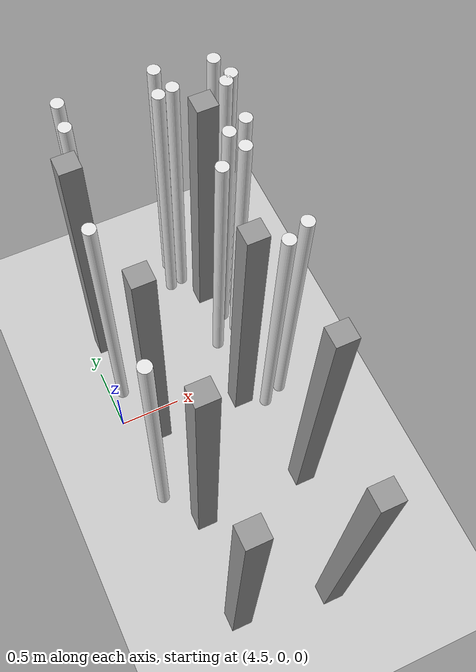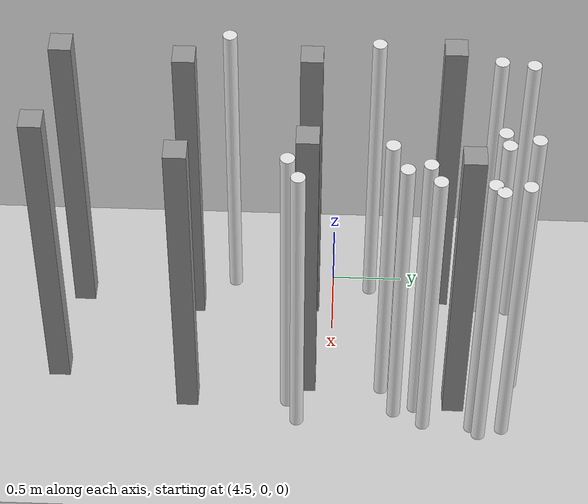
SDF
<sdf version="1.7">
 <world name="default">
  <model name="ground_plane">
   <static>1</static>
   <link name="link">
    <collision name="collision">
     <geometry><plane><normal>0 0 1</normal><size>100 100</size></plane></geometry>
     <surface><friction><ode><mu>100</mu><mu2>50</mu2></ode></friction></surface>
    </collision>
    <visual name="visual">
     <cast_shadows>0</cast_shadows>
     <geometry><plane><normal>0 0 1</normal><size>100 100</size></plane></geometry>
     <material>
      <script><uri>file://media/materials/scripts/gazebo.material</uri><name>Gazebo/Grey</name></script>
     </material>
    </visual>
   </link>
  </model>
  <model name="0.16_wall_clone_6">
   <pose>5.58437 2.57587 0 0 -0 0</pose>
   <link name="Wall_22">
    <collision name="Wall_22_Collision">
     <geometry><box><size>0.16 0.15 2.5</size></box></geometry>
     <pose>0 0 1.25 0 -0 0</pose>
    </collision>
    <visual name="Wall_22_Visual">
     <pose>0 0 1.25 0 -0 0</pose>
     <geometry><box><size>0.16 0.15 2.5</size></box></geometry>
     <material>
      <script><uri>file://media/materials/scripts/gazebo.material</uri><name>Gazebo/Grey</name></script>
      <ambient>1 1 1 1</ambient>
     </material>
     <meta><layer>0</layer></meta>
    </visual>
    <pose>-0.929849 -1.80578 0 0 -0 3.14159</pose>
   </link>
   <static>1</static>
  </model>
  <model name="0.16_wall_clone_7">
   <pose>6.57855 2.67796 0 0 -0 0</pose>
   <link name="Wall_22">
    <collision name="Wall_22_Collision">
     <geometry><box><size>0.16 0.15 2.5</size></box></geometry>
     <pose>0 0 1.25 0 -0 0</pose>
    </collision>
    <visual name="Wall_22_Visual">
     <pose>0 0 1.25 0 -0 0</pose>
     <geometry><box><size>0.16 0.15 2.5</size></box></geometry>
     <material>
      <script><uri>file://media/materials/scripts/gazebo.material</uri><name>Gazebo/Grey</name></script>
      <ambient>1 1 1 1</ambient>
     </material>
     <meta><layer>0</layer></meta>
    </visual>
    <pose>-0.929849 -1.80578 0 0 -0 3.14159</pose>
   </link>
   <static>1</static>
  </model>
  <model name="0.16_wall_clone_8">
   <pose>6.43517 1.62421 0 0 -0 0</pose>
   <link name="Wall_22">
    <collision name="Wall_22_Collision">
     <geometry><box><size>0.16 0.15 2.5</size></box></geometry>
     <pose>0 0 1.25 0 -0 0</pose>
    </collision>
    <visual name="Wall_22_Visual">
     <pose>0 0 1.25 0 -0 0</pose>
     <geometry><box><size>0.16 0.15 2.5</size></box></geometry>
     <material>
      <script><uri>file://media/materials/scripts/gazebo.material</uri><name>Gazebo/Grey</name></script>
      <ambient>1 1 1 1</ambient>
     </material>
     <meta><layer>0</layer></meta>
    </visual>
    <pose>-0.929849 -1.80578 0 0 -0 3.14159</pose>
   </link>
   <static>1</static>
  </model>
  <model name="0.16_wall_clone_9">
   <pose>5.68607 1.62961 0 0 -0 0</pose>
   <link name="Wall_22">
    <collision name="Wall_22_Collision">
     <geometry><box><size>0.16 0.15 2.5</size></box></geometry>
     <pose>0 0 1.25 0 -0 0</pose>
    </collision>
    <visual name="Wall_22_Visual">
     <pose>0 0 1.25 0 -0 0</pose>
     <geometry><box><size>0.16 0.15 2.5</size></box></geometry>
     <material>
      <script><uri>file://media/materials/scripts/gazebo.material</uri><name>Gazebo/Grey</name></script>
      <ambient>1 1 1 1</ambient>
     </material>
     <meta><layer>0</layer></meta>
    </visual>
    <pose>-0.929849 -1.80578 0 0 -0 3.14159</pose>
   </link>
   <static>1</static>
  </model>
  <model name="0.16_wall_clone_10">
   <pose>6.59414 0.79446 0 0 -0 0</pose>
   <link name="Wall_22">
    <collision name="Wall_22_Collision">
     <geometry><box><size>0.16 0.15 2.5</size></box></geometry>
     <pose>0 0 1.25 0 -0 0</pose>
    </collision>
    <visual name="Wall_22_Visual">
     <pose>0 0 1.25 0 -0 0</pose>
     <geometry><box><size>0.16 0.15 2.5</size></box></geometry>
     <material>
      <script><uri>file://media/materials/scripts/gazebo.material</uri><name>Gazebo/Grey</name></script>
      <ambient>1 1 1 1</ambient>
     </material>
     <meta><layer>0</layer></meta>
    </visual>
    <pose>-0.929849 -1.80578 0 0 -0 3.14159</pose>
   </link>
   <static>1</static>
  </model>
  <model name="0.16_wall_clone_11">
   <pose>6.35594 -0.14363 0 0 -0 0</pose>
   <link name="Wall_22">
    <collision name="Wall_22_Collision">
     <geometry><box><size>0.16 0.15 2.5</size></box></geometry>
     <pose>0 0 1.25 0 -0 0</pose>
    </collision>
    <visual name="Wall_22_Visual">
     <pose>0 0 1.25 0 -0 0</pose>
     <geometry><box><size>0.16 0.15 2.5</size></box></geometry>
     <material>
      <script><uri>file://media/materials/scripts/gazebo.material</uri><name>Gazebo/Grey</name></script>
      <ambient>1 1 1 1</ambient>
     </material>
     <meta><layer>0</layer></meta>
    </visual>
    <pose>-0.929849 -1.80578 0 0 -0 3.14159</pose>
   </link>
   <static>1</static>
  </model>
  <model name="0.16_wall_clone_12">
   <pose>5.62967 -0.03276 0 0 -0 0</pose>
   <link name="Wall_22">
    <collision name="Wall_22_Collision">
     <geometry><box><size>0.16 0.15 2.5</size></box></geometry>
     <pose>0 0 1.25 0 -0 0</pose>
    </collision>
    <visual name="Wall_22_Visual">
     <pose>0 0 1.25 0 -0 0</pose>
     <geometry><box><size>0.16 0.15 2.5</size></box></geometry>
     <material>
      <script><uri>file://media/materials/scripts/gazebo.material</uri><name>Gazebo/Grey</name></script>
      <ambient>1 1 1 1</ambient>
     </material>
     <meta><layer>0</layer></meta>
    </visual>
    <pose>-0.929849 -1.80578 0 0 -0 3.14159</pose>
   </link>
   <static>1</static>
  </model>
  <model name="0.16_wall_clone_13">
   <pose>5.71648 0.78705 0 0 -0 0</pose>
   <link name="Wall_22">
    <collision name="Wall_22_Collision">
     <geometry><box><size>0.16 0.15 2.5</size></box></geometry>
     <pose>0 0 1.25 0 -0 0</pose>
    </collision>
    <visual name="Wall_22_Visual">
     <pose>0 0 1.25 0 -0 0</pose>
     <geometry><box><size>0.16 0.15 2.5</size></box></geometry>
     <material>
      <script><uri>file://media/materials/scripts/gazebo.material</uri><name>Gazebo/Grey</name></script>
      <ambient>1 1 1 1</ambient>
     </material>
     <meta><layer>0</layer></meta>
    </visual>
    <pose>-0.929849 -1.80578 0 0 -0 3.14159</pose>
   </link>
   <static>1</static>
  </model>
  <model name="White_pole_clone_clone_10_clone_1">
   <link name="link_0">
    <inertial>
     <mass>1</mass>
     <inertia><ixx>0.145833</ixx><ixy>0</ixy><ixz>0</ixz><iyy>0.145833</iyy><iyz>0</iyz><izz>0.125</izz></inertia>
    </inertial>
    <visual name="visual">
     <geometry><cylinder><radius>0.0478039</radius><length>2.47001</length></cylinder></geometry>
     <material>
      <lighting>1</lighting>
      <script><uri>file://media/materials/scripts/gazebo.material</uri><name>Gazebo/White</name></script>
      <shader type="vertex"><normal_map>__default__</normal_map></shader>
      <ambient>1 1 1 1</ambient>
      <diffuse>1 1 1 1</diffuse>
      <specular>0 0 0 1</specular>
      <emissive>0 0 0 1</emissive>
     </material>
    </visual>
    <collision name="collision">
     <geometry><cylinder><radius>0.047804</radius><length>2.47001</length></cylinder></geometry>
     <surface>
      <friction>
       <ode><mu>1</mu><mu2>1</mu2><fdir1>0 0 0</fdir1><slip1>0</slip1><slip2>0</slip2></ode>
       <torsional>
        <coefficient>1</coefficient>
        <patch_radius>0</patch_radius>
        <surface_radius>0</surface_radius>
        <use_patch_radius>1</use_patch_radius>
        <ode><slip>0</slip></ode>
       </torsional>
      </friction>
      <bounce><restitution_coefficient>0</restitution_coefficient><threshold>1e+06</threshold></bounce>
      <contact>
       <collide_without_contact>0</collide_without_contact>
       <collide_without_contact_bitmask>1</collide_without_contact_bitmask>
       <collide_bitmask>1</collide_bitmask>
       <ode>
        <soft_cfm>0</soft_cfm>
        <soft_erp>0.2</soft_erp>
        <kp>1e+13</kp>
        <kd>1</kd>
        <max_vel>0.01</max_vel>
        <min_depth>0</min_depth>
       </ode>
       <bullet>
        <split_impulse>1</split_impulse>
        <split_impulse_penetration_threshold>-0.01</split_impulse_penetration_threshold>
        <soft_cfm>0</soft_cfm>
        <soft_erp>0.2</soft_erp>
        <kp>1e+13</kp>
        <kd>1</kd>
       </bullet>
      </contact>
     </surface>
    </collision>
   </link>
   <static>1</static>
   <pose>4.55917 -0.727853 1.235 0 -2e-06 -5e-06</pose>
  </model>
  <model name="White_pole_clone_clone_10_clone_5">
   <link name="link_0">
    <inertial>
     <mass>1</mass>
     <inertia><ixx>0.145833</ixx><ixy>0</ixy><ixz>0</ixz><iyy>0.145833</iyy><iyz>0</iyz><izz>0.125</izz></inertia>
    </inertial>
    <visual name="visual">
     <geometry><cylinder><radius>0.0478039</radius><length>2.47001</length></cylinder></geometry>
     <material>
      <lighting>1</lighting>
      <script><uri>file://media/materials/scripts/gazebo.material</uri><name>Gazebo/White</name></script>
      <shader type="vertex"><normal_map>__default__</normal_map></shader>
      <ambient>1 1 1 1</ambient>
      <diffuse>1 1 1 1</diffuse>
      <specular>0 0 0 1</specular>
      <emissive>0 0 0 1</emissive>
     </material>
    </visual>
    <collision name="collision">
     <geometry><cylinder><radius>0.047804</radius><length>2.47001</length></cylinder></geometry>
     <surface>
      <friction>
       <ode><mu>1</mu><mu2>1</mu2><fdir1>0 0 0</fdir1><slip1>0</slip1><slip2>0</slip2></ode>
       <torsional>
        <coefficient>1</coefficient>
        <patch_radius>0</patch_radius>
        <surface_radius>0</surface_radius>
        <use_patch_radius>1</use_patch_radius>
        <ode><slip>0</slip></ode>
       </torsional>
      </friction>
      <bounce><restitution_coefficient>0</restitution_coefficient><threshold>1e+06</threshold></bounce>
      <contact>
       <collide_without_contact>0</collide_without_contact>
       <collide_without_contact_bitmask>1</collide_without_contact_bitmask>
       <collide_bitmask>1</collide_bitmask>
       <ode>
        <soft_cfm>0</soft_cfm>
        <soft_erp>0.2</soft_erp>
        <kp>1e+13</kp>
        <kd>1</kd>
        <max_vel>0.01</max_vel>
        <min_depth>0</min_depth>
       </ode>
       <bullet>
        <split_impulse>1</split_impulse>
        <split_impulse_penetration_threshold>-0.01</split_impulse_penetration_threshold>
        <soft_cfm>0</soft_cfm>
        <soft_erp>0.2</soft_erp>
        <kp>1e+13</kp>
        <kd>1</kd>
       </bullet>
      </contact>
     </surface>
    </collision>
   </link>
   <static>1</static>
   <pose>4.60808 0.268553 1.235 0 -2e-06 -5e-06</pose>
  </model>
  <model name="White_pole_clone_clone_10_clone_9">
   <link name="link_0">
    <inertial>
     <mass>1</mass>
     <inertia><ixx>0.145833</ixx><ixy>0</ixy><ixz>0</ixz><iyy>0.145833</iyy><iyz>0</iyz><izz>0.125</izz></inertia>
    </inertial>
    <visual name="visual">
     <geometry><cylinder><radius>0.0478039</radius><length>2.47001</length></cylinder></geometry>
     <material>
      <lighting>1</lighting>
      <script><uri>file://media/materials/scripts/gazebo.material</uri><name>Gazebo/White</name></script>
      <shader type="vertex"><normal_map>__default__</normal_map></shader>
      <ambient>1 1 1 1</ambient>
      <diffuse>1 1 1 1</diffuse>
      <specular>0 0 0 1</specular>
      <emissive>0 0 0 1</emissive>
     </material>
    </visual>
    <collision name="collision">
     <geometry><cylinder><radius>0.047804</radius><length>2.47001</length></cylinder></geometry>
     <surface>
      <friction>
       <ode><mu>1</mu><mu2>1</mu2><fdir1>0 0 0</fdir1><slip1>0</slip1><slip2>0</slip2></ode>
       <torsional>
        <coefficient>1</coefficient>
        <patch_radius>0</patch_radius>
        <surface_radius>0</surface_radius>
        <use_patch_radius>1</use_patch_radius>
        <ode><slip>0</slip></ode>
       </torsional>
      </friction>
      <bounce><restitution_coefficient>0</restitution_coefficient><threshold>1e+06</threshold></bounce>
      <contact>
       <collide_without_contact>0</collide_without_contact>
       <collide_without_contact_bitmask>1</collide_without_contact_bitmask>
       <collide_bitmask>1</collide_bitmask>
       <ode>
        <soft_cfm>0</soft_cfm>
        <soft_erp>0.2</soft_erp>
        <kp>1e+13</kp>
        <kd>1</kd>
        <max_vel>0.01</max_vel>
        <min_depth>0</min_depth>
       </ode>
       <bullet>
        <split_impulse>1</split_impulse>
        <split_impulse_penetration_threshold>-0.01</split_impulse_penetration_threshold>
        <soft_cfm>0</soft_cfm>
        <soft_erp>0.2</soft_erp>
        <kp>1e+13</kp>
        <kd>1</kd>
       </bullet>
      </contact>
     </surface>
    </collision>
   </link>
   <static>1</static>
   <pose>4.75035 1.07004 1.235 0 -2e-06 -5e-06</pose>
  </model>
  <model name="White_pole_clone_clone_10_clone_10">
   <link name="link_0">
    <inertial>
     <mass>1</mass>
     <inertia><ixx>0.145833</ixx><ixy>0</ixy><ixz>0</ixz><iyy>0.145833</iyy><iyz>0</iyz><izz>0.125</izz></inertia>
    </inertial>
    <visual name="visual">
     <geometry><cylinder><radius>0.0478039</radius><length>2.47001</length></cylinder></geometry>
     <material>
      <lighting>1</lighting>
      <script><uri>file://media/materials/scripts/gazebo.material</uri><name>Gazebo/White</name></script>
      <shader type="vertex"><normal_map>__default__</normal_map></shader>
      <ambient>1 1 1 1</ambient>
      <diffuse>1 1 1 1</diffuse>
      <specular>0 0 0 1</specular>
      <emissive>0 0 0 1</emissive>
     </material>
    </visual>
    <collision name="collision">
     <geometry><cylinder><radius>0.047804</radius><length>2.47001</length></cylinder></geometry>
     <surface>
      <friction>
       <ode><mu>1</mu><mu2>1</mu2><fdir1>0 0 0</fdir1><slip1>0</slip1><slip2>0</slip2></ode>
       <torsional>
        <coefficient>1</coefficient>
        <patch_radius>0</patch_radius>
        <surface_radius>0</surface_radius>
        <use_patch_radius>1</use_patch_radius>
        <ode><slip>0</slip></ode>
       </torsional>
      </friction>
      <bounce><restitution_coefficient>0</restitution_coefficient><threshold>1e+06</threshold></bounce>
      <contact>
       <collide_without_contact>0</collide_without_contact>
       <collide_without_contact_bitmask>1</collide_without_contact_bitmask>
       <collide_bitmask>1</collide_bitmask>
       <ode>
        <soft_cfm>0</soft_cfm>
        <soft_erp>0.2</soft_erp>
        <kp>1e+13</kp>
        <kd>1</kd>
        <max_vel>0.01</max_vel>
        <min_depth>0</min_depth>
       </ode>
       <bullet>
        <split_impulse>1</split_impulse>
        <split_impulse_penetration_threshold>-0.01</split_impulse_penetration_threshold>
        <soft_cfm>0</soft_cfm>
        <soft_erp>0.2</soft_erp>
        <kp>1e+13</kp>
        <kd>1</kd>
       </bullet>
      </contact>
     </surface>
    </collision>
   </link>
   <static>1</static>
   <pose>4.77607 1.28025 1.235 0 -2e-06 -5e-06</pose>
  </model>
  <model name="White_pole_clone_clone_10_clone_11">
   <link name="link_0">
    <inertial>
     <mass>1</mass>
     <inertia><ixx>0.145833</ixx><ixy>0</ixy><ixz>0</ixz><iyy>0.145833</iyy><iyz>0</iyz><izz>0.125</izz></inertia>
    </inertial>
    <visual name="visual">
     <geometry><cylinder><radius>0.0478039</radius><length>2.47001</length></cylinder></geometry>
     <material>
      <lighting>1</lighting>
      <script><uri>file://media/materials/scripts/gazebo.material</uri><name>Gazebo/White</name></script>
      <shader type="vertex"><normal_map>__default__</normal_map></shader>
      <ambient>1 1 1 1</ambient>
      <diffuse>1 1 1 1</diffuse>
      <specular>0 0 0 1</specular>
      <emissive>0 0 0 1</emissive>
     </material>
    </visual>
    <collision name="collision">
     <geometry><cylinder><radius>0.047804</radius><length>2.47001</length></cylinder></geometry>
     <surface>
      <friction>
       <ode><mu>1</mu><mu2>1</mu2><fdir1>0 0 0</fdir1><slip1>0</slip1><slip2>0</slip2></ode>
       <torsional>
        <coefficient>1</coefficient>
        <patch_radius>0</patch_radius>
        <surface_radius>0</surface_radius>
        <use_patch_radius>1</use_patch_radius>
        <ode><slip>0</slip></ode>
       </torsional>
      </friction>
      <bounce><restitution_coefficient>0</restitution_coefficient><threshold>1e+06</threshold></bounce>
      <contact>
       <collide_without_contact>0</collide_without_contact>
       <collide_without_contact_bitmask>1</collide_without_contact_bitmask>
       <collide_bitmask>1</collide_bitmask>
       <ode>
        <soft_cfm>0</soft_cfm>
        <soft_erp>0.2</soft_erp>
        <kp>1e+13</kp>
        <kd>1</kd>
        <max_vel>0.01</max_vel>
        <min_depth>0</min_depth>
       </ode>
       <bullet>
        <split_impulse>1</split_impulse>
        <split_impulse_penetration_threshold>-0.01</split_impulse_penetration_threshold>
        <soft_cfm>0</soft_cfm>
        <soft_erp>0.2</soft_erp>
        <kp>1e+13</kp>
        <kd>1</kd>
       </bullet>
      </contact>
     </surface>
    </collision>
   </link>
   <static>1</static>
   <pose>5.41084 1.07383 1.235 0 -2e-06 -5e-06</pose>
  </model>
  <model name="White_pole_clone_clone_10_clone_12">
   <link name="link_0">
    <inertial>
     <mass>1</mass>
     <inertia><ixx>0.145833</ixx><ixy>0</ixy><ixz>0</ixz><iyy>0.145833</iyy><iyz>0</iyz><izz>0.125</izz></inertia>
    </inertial>
    <visual name="visual">
     <geometry><cylinder><radius>0.0478039</radius><length>2.47001</length></cylinder></geometry>
     <material>
      <lighting>1</lighting>
      <script><uri>file://media/materials/scripts/gazebo.material</uri><name>Gazebo/White</name></script>
      <shader type="vertex"><normal_map>__default__</normal_map></shader>
      <ambient>1 1 1 1</ambient>
      <diffuse>1 1 1 1</diffuse>
      <specular>0 0 0 1</specular>
      <emissive>0 0 0 1</emissive>
     </material>
    </visual>
    <collision name="collision">
     <geometry><cylinder><radius>0.047804</radius><length>2.47001</length></cylinder></geometry>
     <surface>
      <friction>
       <ode><mu>1</mu><mu2>1</mu2><fdir1>0 0 0</fdir1><slip1>0</slip1><slip2>0</slip2></ode>
       <torsional>
        <coefficient>1</coefficient>
        <patch_radius>0</patch_radius>
        <surface_radius>0</surface_radius>
        <use_patch_radius>1</use_patch_radius>
        <ode><slip>0</slip></ode>
       </torsional>
      </friction>
      <bounce><restitution_coefficient>0</restitution_coefficient><threshold>1e+06</threshold></bounce>
      <contact>
       <collide_without_contact>0</collide_without_contact>
       <collide_without_contact_bitmask>1</collide_without_contact_bitmask>
       <collide_bitmask>1</collide_bitmask>
       <ode>
        <soft_cfm>0</soft_cfm>
        <soft_erp>0.2</soft_erp>
        <kp>1e+13</kp>
        <kd>1</kd>
        <max_vel>0.01</max_vel>
        <min_depth>0</min_depth>
       </ode>
       <bullet>
        <split_impulse>1</split_impulse>
        <split_impulse_penetration_threshold>-0.01</split_impulse_penetration_threshold>
        <soft_cfm>0</soft_cfm>
        <soft_erp>0.2</soft_erp>
        <kp>1e+13</kp>
        <kd>1</kd>
       </bullet>
      </contact>
     </surface>
    </collision>
   </link>
   <static>1</static>
   <pose>5.46728 1.28478 1.235 0 -2e-06 -5e-06</pose>
  </model>
  <model name="White_pole_clone_clone_10_clone_13">
   <link name="link_0">
    <inertial>
     <mass>1</mass>
     <inertia><ixx>0.145833</ixx><ixy>0</ixy><ixz>0</ixz><iyy>0.145833</iyy><iyz>0</iyz><izz>0.125</izz></inertia>
    </inertial>
    <visual name="visual">
     <geometry><cylinder><radius>0.0478039</radius><length>2.47001</length></cylinder></geometry>
     <material>
      <lighting>1</lighting>
      <script><uri>file://media/materials/scripts/gazebo.material</uri><name>Gazebo/White</name></script>
      <shader type="vertex"><normal_map>__default__</normal_map></shader>
      <ambient>1 1 1 1</ambient>
      <diffuse>1 1 1 1</diffuse>
      <specular>0 0 0 1</specular>
      <emissive>0 0 0 1</emissive>
     </material>
    </visual>
    <collision name="collision">
     <geometry><cylinder><radius>0.047804</radius><length>2.47001</length></cylinder></geometry>
     <surface>
      <friction>
       <ode><mu>1</mu><mu2>1</mu2><fdir1>0 0 0</fdir1><slip1>0</slip1><slip2>0</slip2></ode>
       <torsional>
        <coefficient>1</coefficient>
        <patch_radius>0</patch_radius>
        <surface_radius>0</surface_radius>
        <use_patch_radius>1</use_patch_radius>
        <ode><slip>0</slip></ode>
       </torsional>
      </friction>
      <bounce><restitution_coefficient>0</restitution_coefficient><threshold>1e+06</threshold></bounce>
      <contact>
       <collide_without_contact>0</collide_without_contact>
       <collide_without_contact_bitmask>1</collide_without_contact_bitmask>
       <collide_bitmask>1</collide_bitmask>
       <ode>
        <soft_cfm>0</soft_cfm>
        <soft_erp>0.2</soft_erp>
        <kp>1e+13</kp>
        <kd>1</kd>
        <max_vel>0.01</max_vel>
        <min_depth>0</min_depth>
       </ode>
       <bullet>
        <split_impulse>1</split_impulse>
        <split_impulse_penetration_threshold>-0.01</split_impulse_penetration_threshold>
        <soft_cfm>0</soft_cfm>
        <soft_erp>0.2</soft_erp>
        <kp>1e+13</kp>
        <kd>1</kd>
       </bullet>
      </contact>
     </surface>
    </collision>
   </link>
   <static>1</static>
   <pose>5.5212 1.09502 1.235 0 -2e-06 -5e-06</pose>
  </model>
  <model name="White_pole_clone_clone_10_clone_14">
   <link name="link_0">
    <inertial>
     <mass>1</mass>
     <inertia><ixx>0.145833</ixx><ixy>0</ixy><ixz>0</ixz><iyy>0.145833</iyy><iyz>0</iyz><izz>0.125</izz></inertia>
    </inertial>
    <visual name="visual">
     <geometry><cylinder><radius>0.0478039</radius><length>2.47001</length></cylinder></geometry>
     <material>
      <lighting>1</lighting>
      <script><uri>file://media/materials/scripts/gazebo.material</uri><name>Gazebo/White</name></script>
      <shader type="vertex"><normal_map>__default__</normal_map></shader>
      <ambient>1 1 1 1</ambient>
      <diffuse>1 1 1 1</diffuse>
      <specular>0 0 0 1</specular>
      <emissive>0 0 0 1</emissive>
     </material>
    </visual>
    <collision name="collision">
     <geometry><cylinder><radius>0.047804</radius><length>2.47001</length></cylinder></geometry>
     <surface>
      <friction>
       <ode><mu>1</mu><mu2>1</mu2><fdir1>0 0 0</fdir1><slip1>0</slip1><slip2>0</slip2></ode>
       <torsional>
        <coefficient>1</coefficient>
        <patch_radius>0</patch_radius>
        <surface_radius>0</surface_radius>
        <use_patch_radius>1</use_patch_radius>
        <ode><slip>0</slip></ode>
       </torsional>
      </friction>
      <bounce><restitution_coefficient>0</restitution_coefficient><threshold>1e+06</threshold></bounce>
      <contact>
       <collide_without_contact>0</collide_without_contact>
       <collide_without_contact_bitmask>1</collide_without_contact_bitmask>
       <collide_bitmask>1</collide_bitmask>
       <ode>
        <soft_cfm>0</soft_cfm>
        <soft_erp>0.2</soft_erp>
        <kp>1e+13</kp>
        <kd>1</kd>
        <max_vel>0.01</max_vel>
        <min_depth>0</min_depth>
       </ode>
       <bullet>
        <split_impulse>1</split_impulse>
        <split_impulse_penetration_threshold>-0.01</split_impulse_penetration_threshold>
        <soft_cfm>0</soft_cfm>
        <soft_erp>0.2</soft_erp>
        <kp>1e+13</kp>
        <kd>1</kd>
       </bullet>
      </contact>
     </surface>
    </collision>
   </link>
   <static>1</static>
   <pose>5.87022 0.996652 1.235 0 -2e-06 -5e-06</pose>
  </model>
  <model name="White_pole_clone_clone_10_clone_15">
   <link name="link_0">
    <inertial>
     <mass>1</mass>
     <inertia><ixx>0.145833</ixx><ixy>0</ixy><ixz>0</ixz><iyy>0.145833</iyy><iyz>0</iyz><izz>0.125</izz></inertia>
    </inertial>
    <visual name="visual">
     <geometry><cylinder><radius>0.0478039</radius><length>2.47001</length></cylinder></geometry>
     <material>
      <lighting>1</lighting>
      <script><uri>file://media/materials/scripts/gazebo.material</uri><name>Gazebo/White</name></script>
      <shader type="vertex"><normal_map>__default__</normal_map></shader>
      <ambient>1 1 1 1</ambient>
      <diffuse>1 1 1 1</diffuse>
      <specular>0 0 0 1</specular>
      <emissive>0 0 0 1</emissive>
     </material>
    </visual>
    <collision name="collision">
     <geometry><cylinder><radius>0.047804</radius><length>2.47001</length></cylinder></geometry>
     <surface>
      <friction>
       <ode><mu>1</mu><mu2>1</mu2><fdir1>0 0 0</fdir1><slip1>0</slip1><slip2>0</slip2></ode>
       <torsional>
        <coefficient>1</coefficient>
        <patch_radius>0</patch_radius>
        <surface_radius>0</surface_radius>
        <use_patch_radius>1</use_patch_radius>
        <ode><slip>0</slip></ode>
       </torsional>
      </friction>
      <bounce><restitution_coefficient>0</restitution_coefficient><threshold>1e+06</threshold></bounce>
      <contact>
       <collide_without_contact>0</collide_without_contact>
       <collide_without_contact_bitmask>1</collide_without_contact_bitmask>
       <collide_bitmask>1</collide_bitmask>
       <ode>
        <soft_cfm>0</soft_cfm>
        <soft_erp>0.2</soft_erp>
        <kp>1e+13</kp>
        <kd>1</kd>
        <max_vel>0.01</max_vel>
        <min_depth>0</min_depth>
       </ode>
       <bullet>
        <split_impulse>1</split_impulse>
        <split_impulse_penetration_threshold>-0.01</split_impulse_penetration_threshold>
        <soft_cfm>0</soft_cfm>
        <soft_erp>0.2</soft_erp>
        <kp>1e+13</kp>
        <kd>1</kd>
       </bullet>
      </contact>
     </surface>
    </collision>
   </link>
   <static>1</static>
   <pose>5.93063 1.04743 1.235 0 -2e-06 -5e-06</pose>
  </model>
  <model name="White_pole_clone_clone_10_clone_16">
   <link name="link_0">
    <inertial>
     <mass>1</mass>
     <inertia><ixx>0.145833</ixx><ixy>0</ixy><ixz>0</ixz><iyy>0.145833</iyy><iyz>0</iyz><izz>0.125</izz></inertia>
    </inertial>
    <visual name="visual">
     <geometry><cylinder><radius>0.0478039</radius><length>2.47001</length></cylinder></geometry>
     <material>
      <lighting>1</lighting>
      <script><uri>file://media/materials/scripts/gazebo.material</uri><name>Gazebo/White</name></script>
      <shader type="vertex"><normal_map>__default__</normal_map></shader>
      <ambient>1 1 1 1</ambient>
      <diffuse>1 1 1 1</diffuse>
      <specular>0 0 0 1</specular>
      <emissive>0 0 0 1</emissive>
     </material>
    </visual>
    <collision name="collision">
     <geometry><cylinder><radius>0.047804</radius><length>2.47001</length></cylinder></geometry>
     <surface>
      <friction>
       <ode><mu>1</mu><mu2>1</mu2><fdir1>0 0 0</fdir1><slip1>0</slip1><slip2>0</slip2></ode>
       <torsional>
        <coefficient>1</coefficient>
        <patch_radius>0</patch_radius>
        <surface_radius>0</surface_radius>
        <use_patch_radius>1</use_patch_radius>
        <ode><slip>0</slip></ode>
       </torsional>
      </friction>
      <bounce><restitution_coefficient>0</restitution_coefficient><threshold>1e+06</threshold></bounce>
      <contact>
       <collide_without_contact>0</collide_without_contact>
       <collide_without_contact_bitmask>1</collide_without_contact_bitmask>
       <collide_bitmask>1</collide_bitmask>
       <ode>
        <soft_cfm>0</soft_cfm>
        <soft_erp>0.2</soft_erp>
        <kp>1e+13</kp>
        <kd>1</kd>
        <max_vel>0.01</max_vel>
        <min_depth>0</min_depth>
       </ode>
       <bullet>
        <split_impulse>1</split_impulse>
        <split_impulse_penetration_threshold>-0.01</split_impulse_penetration_threshold>
        <soft_cfm>0</soft_cfm>
        <soft_erp>0.2</soft_erp>
        <kp>1e+13</kp>
        <kd>1</kd>
       </bullet>
      </contact>
     </surface>
    </collision>
   </link>
   <static>1</static>
   <pose>5.87733 1.21257 1.235 0 -2e-06 -5e-06</pose>
  </model>
  <model name="White_pole_clone_clone_10_clone_17">
   <link name="link_0">
    <inertial>
     <mass>1</mass>
     <inertia><ixx>0.145833</ixx><ixy>0</ixy><ixz>0</ixz><iyy>0.145833</iyy><iyz>0</iyz><izz>0.125</izz></inertia>
    </inertial>
    <visual name="visual">
     <geometry><cylinder><radius>0.0478039</radius><length>2.47001</length></cylinder></geometry>
     <material>
      <lighting>1</lighting>
      <script><uri>file://media/materials/scripts/gazebo.material</uri><name>Gazebo/White</name></script>
      <shader type="vertex"><normal_map>__default__</normal_map></shader>
      <ambient>1 1 1 1</ambient>
      <diffuse>1 1 1 1</diffuse>
      <specular>0 0 0 1</specular>
      <emissive>0 0 0 1</emissive>
     </material>
    </visual>
    <collision name="collision">
     <geometry><cylinder><radius>0.047804</radius><length>2.47001</length></cylinder></geometry>
     <surface>
      <friction>
       <ode><mu>1</mu><mu2>1</mu2><fdir1>0 0 0</fdir1><slip1>0</slip1><slip2>0</slip2></ode>
       <torsional>
        <coefficient>1</coefficient>
        <patch_radius>0</patch_radius>
        <surface_radius>0</surface_radius>
        <use_patch_radius>1</use_patch_radius>
        <ode><slip>0</slip></ode>
       </torsional>
      </friction>
      <bounce><restitution_coefficient>0</restitution_coefficient><threshold>1e+06</threshold></bounce>
      <contact>
       <collide_without_contact>0</collide_without_contact>
       <collide_without_contact_bitmask>1</collide_without_contact_bitmask>
       <collide_bitmask>1</collide_bitmask>
       <ode>
        <soft_cfm>0</soft_cfm>
        <soft_erp>0.2</soft_erp>
        <kp>1e+13</kp>
        <kd>1</kd>
        <max_vel>0.01</max_vel>
        <min_depth>0</min_depth>
       </ode>
       <bullet>
        <split_impulse>1</split_impulse>
        <split_impulse_penetration_threshold>-0.01</split_impulse_penetration_threshold>
        <soft_cfm>0</soft_cfm>
        <soft_erp>0.2</soft_erp>
        <kp>1e+13</kp>
        <kd>1</kd>
       </bullet>
      </contact>
     </surface>
    </collision>
   </link>
   <static>1</static>
   <pose>5.85383 0.657223 1.235 0 -2e-06 -5e-06</pose>
  </model>
  <model name="White_pole_clone_clone_10_clone_18">
   <link name="link_0">
    <inertial>
     <mass>1</mass>
     <inertia><ixx>0.145833</ixx><ixy>0</ixy><ixz>0</ixz><iyy>0.145833</iyy><iyz>0</iyz><izz>0.125</izz></inertia>
    </inertial>
    <visual name="visual">
     <geometry><cylinder><radius>0.0478039</radius><length>2.47001</length></cylinder></geometry>
     <material>
      <lighting>1</lighting>
      <script><uri>file://media/materials/scripts/gazebo.material</uri><name>Gazebo/White</name></script>
      <shader type="vertex"><normal_map>__default__</normal_map></shader>
      <ambient>1 1 1 1</ambient>
      <diffuse>1 1 1 1</diffuse>
      <specular>0 0 0 1</specular>
      <emissive>0 0 0 1</emissive>
     </material>
    </visual>
    <collision name="collision">
     <geometry><cylinder><radius>0.047804</radius><length>2.47001</length></cylinder></geometry>
     <surface>
      <friction>
       <ode><mu>1</mu><mu2>1</mu2><fdir1>0 0 0</fdir1><slip1>0</slip1><slip2>0</slip2></ode>
       <torsional>
        <coefficient>1</coefficient>
        <patch_radius>0</patch_radius>
        <surface_radius>0</surface_radius>
        <use_patch_radius>1</use_patch_radius>
        <ode><slip>0</slip></ode>
       </torsional>
      </friction>
      <bounce><restitution_coefficient>0</restitution_coefficient><threshold>1e+06</threshold></bounce>
      <contact>
       <collide_without_contact>0</collide_without_contact>
       <collide_without_contact_bitmask>1</collide_without_contact_bitmask>
       <collide_bitmask>1</collide_bitmask>
       <ode>
        <soft_cfm>0</soft_cfm>
        <soft_erp>0.2</soft_erp>
        <kp>1e+13</kp>
        <kd>1</kd>
        <max_vel>0.01</max_vel>
        <min_depth>0</min_depth>
       </ode>
       <bullet>
        <split_impulse>1</split_impulse>
        <split_impulse_penetration_threshold>-0.01</split_impulse_penetration_threshold>
        <soft_cfm>0</soft_cfm>
        <soft_erp>0.2</soft_erp>
        <kp>1e+13</kp>
        <kd>1</kd>
       </bullet>
      </contact>
     </surface>
    </collision>
   </link>
   <static>1</static>
   <pose>5.70735 0.598181 1.235 0 -2e-06 -5e-06</pose>
  </model>
  <model name="White_pole_clone_clone_10_clone_19">
   <link name="link_0">
    <inertial>
     <mass>1</mass>
     <inertia><ixx>0.145833</ixx><ixy>0</ixy><ixz>0</ixz><iyy>0.145833</iyy><iyz>0</iyz><izz>0.125</izz></inertia>
    </inertial>
    <visual name="visual">
     <geometry><cylinder><radius>0.0478039</radius><length>2.47001</length></cylinder></geometry>
     <material>
      <lighting>1</lighting>
      <script><uri>file://media/materials/scripts/gazebo.material</uri><name>Gazebo/White</name></script>
      <shader type="vertex"><normal_map>__default__</normal_map></shader>
      <ambient>1 1 1 1</ambient>
      <diffuse>1 1 1 1</diffuse>
      <specular>0 0 0 1</specular>
      <emissive>0 0 0 1</emissive>
     </material>
    </visual>
    <collision name="collision">
     <geometry><cylinder><radius>0.047804</radius><length>2.47001</length></cylinder></geometry>
     <surface>
      <friction>
       <ode><mu>1</mu><mu2>1</mu2><fdir1>0 0 0</fdir1><slip1>0</slip1><slip2>0</slip2></ode>
       <torsional>
        <coefficient>1</coefficient>
        <patch_radius>0</patch_radius>
        <surface_radius>0</surface_radius>
        <use_patch_radius>1</use_patch_radius>
        <ode><slip>0</slip></ode>
       </torsional>
      </friction>
      <bounce><restitution_coefficient>0</restitution_coefficient><threshold>1e+06</threshold></bounce>
      <contact>
       <collide_without_contact>0</collide_without_contact>
       <collide_without_contact_bitmask>1</collide_without_contact_bitmask>
       <collide_bitmask>1</collide_bitmask>
       <ode>
        <soft_cfm>0</soft_cfm>
        <soft_erp>0.2</soft_erp>
        <kp>1e+13</kp>
        <kd>1</kd>
        <max_vel>0.01</max_vel>
        <min_depth>0</min_depth>
       </ode>
       <bullet>
        <split_impulse>1</split_impulse>
        <split_impulse_penetration_threshold>-0.01</split_impulse_penetration_threshold>
        <soft_cfm>0</soft_cfm>
        <soft_erp>0.2</soft_erp>
        <kp>1e+13</kp>
        <kd>1</kd>
       </bullet>
      </contact>
     </surface>
    </collision>
   </link>
   <static>1</static>
   <pose>5.75411 0.451392 1.235 0 -2e-06 -5e-06</pose>
  </model>
  <model name="White_pole_clone_clone_10_clone_20">
   <link name="link_0">
    <inertial>
     <mass>1</mass>
     <inertia><ixx>0.145833</ixx><ixy>0</ixy><ixz>0</ixz><iyy>0.145833</iyy><iyz>0</iyz><izz>0.125</izz></inertia>
    </inertial>
    <visual name="visual">
     <geometry><cylinder><radius>0.0478039</radius><length>2.47001</length></cylinder></geometry>
     <material>
      <lighting>1</lighting>
      <script><uri>file://media/materials/scripts/gazebo.material</uri><name>Gazebo/White</name></script>
      <shader type="vertex"><normal_map>__default__</normal_map></shader>
      <ambient>1 1 1 1</ambient>
      <diffuse>1 1 1 1</diffuse>
      <specular>0 0 0 1</specular>
      <emissive>0 0 0 1</emissive>
     </material>
    </visual>
    <collision name="collision">
     <geometry><cylinder><radius>0.047804</radius><length>2.47001</length></cylinder></geometry>
     <surface>
      <friction>
       <ode><mu>1</mu><mu2>1</mu2><fdir1>0 0 0</fdir1><slip1>0</slip1><slip2>0</slip2></ode>
       <torsional>
        <coefficient>1</coefficient>
        <patch_radius>0</patch_radius>
        <surface_radius>0</surface_radius>
        <use_patch_radius>1</use_patch_radius>
        <ode><slip>0</slip></ode>
       </torsional>
      </friction>
      <bounce><restitution_coefficient>0</restitution_coefficient><threshold>1e+06</threshold></bounce>
      <contact>
       <collide_without_contact>0</collide_without_contact>
       <collide_without_contact_bitmask>1</collide_without_contact_bitmask>
       <collide_bitmask>1</collide_bitmask>
       <ode>
        <soft_cfm>0</soft_cfm>
        <soft_erp>0.2</soft_erp>
        <kp>1e+13</kp>
        <kd>1</kd>
        <max_vel>0.01</max_vel>
        <min_depth>0</min_depth>
       </ode>
       <bullet>
        <split_impulse>1</split_impulse>
        <split_impulse_penetration_threshold>-0.01</split_impulse_penetration_threshold>
        <soft_cfm>0</soft_cfm>
        <soft_erp>0.2</soft_erp>
        <kp>1e+13</kp>
        <kd>1</kd>
       </bullet>
      </contact>
     </surface>
    </collision>
   </link>
   <static>1</static>
   <pose>5.54678 0.360046 1.235 0 -2e-06 -5e-06</pose>
  </model>
  <model name="White_pole_clone_clone_10_clone_21">
   <link name="link_0">
    <inertial>
     <mass>1</mass>
     <inertia><ixx>0.145833</ixx><ixy>0</ixy><ixz>0</ixz><iyy>0.145833</iyy><iyz>0</iyz><izz>0.125</izz></inertia>
    </inertial>
    <visual name="visual">
     <geometry><cylinder><radius>0.0478039</radius><length>2.47001</length></cylinder></geometry>
     <material>
      <lighting>1</lighting>
      <script><uri>file://media/materials/scripts/gazebo.material</uri><name>Gazebo/White</name></script>
      <shader type="vertex"><normal_map>__default__</normal_map></shader>
      <ambient>1 1 1 1</ambient>
      <diffuse>1 1 1 1</diffuse>
      <specular>0 0 0 1</specular>
      <emissive>0 0 0 1</emissive>
     </material>
    </visual>
    <collision name="collision">
     <geometry><cylinder><radius>0.047804</radius><length>2.47001</length></cylinder></geometry>
     <surface>
      <friction>
       <ode><mu>1</mu><mu2>1</mu2><fdir1>0 0 0</fdir1><slip1>0</slip1><slip2>0</slip2></ode>
       <torsional>
        <coefficient>1</coefficient>
        <patch_radius>0</patch_radius>
        <surface_radius>0</surface_radius>
        <use_patch_radius>1</use_patch_radius>
        <ode><slip>0</slip></ode>
       </torsional>
      </friction>
      <bounce><restitution_coefficient>0</restitution_coefficient><threshold>1e+06</threshold></bounce>
      <contact>
       <collide_without_contact>0</collide_without_contact>
       <collide_without_contact_bitmask>1</collide_without_contact_bitmask>
       <collide_bitmask>1</collide_bitmask>
       <ode>
        <soft_cfm>0</soft_cfm>
        <soft_erp>0.2</soft_erp>
        <kp>1e+13</kp>
        <kd>1</kd>
        <max_vel>0.01</max_vel>
        <min_depth>0</min_depth>
       </ode>
       <bullet>
        <split_impulse>1</split_impulse>
        <split_impulse_penetration_threshold>-0.01</split_impulse_penetration_threshold>
        <soft_cfm>0</soft_cfm>
        <soft_erp>0.2</soft_erp>
        <kp>1e+13</kp>
        <kd>1</kd>
       </bullet>
      </contact>
     </surface>
    </collision>
   </link>
   <static>1</static>
   <pose>5.68631 -0.303723 1.235 0 -2e-06 -5e-06</pose>
  </model>
  <model name="White_pole_clone_clone_10_clone_22">
   <link name="link_0">
    <inertial>
     <mass>1</mass>
     <inertia><ixx>0.145833</ixx><ixy>0</ixy><ixz>0</ixz><iyy>0.145833</iyy><iyz>0</iyz><izz>0.125</izz></inertia>
    </inertial>
    <visual name="visual">
     <geometry><cylinder><radius>0.0478039</radius><length>2.47001</length></cylinder></geometry>
     <material>
      <lighting>1</lighting>
      <script><uri>file://media/materials/scripts/gazebo.material</uri><name>Gazebo/White</name></script>
      <shader type="vertex"><normal_map>__default__</normal_map></shader>
      <ambient>1 1 1 1</ambient>
      <diffuse>1 1 1 1</diffuse>
      <specular>0 0 0 1</specular>
      <emissive>0 0 0 1</emissive>
     </material>
    </visual>
    <collision name="collision">
     <geometry><cylinder><radius>0.047804</radius><length>2.47001</length></cylinder></geometry>
     <surface>
      <friction>
       <ode><mu>1</mu><mu2>1</mu2><fdir1>0 0 0</fdir1><slip1>0</slip1><slip2>0</slip2></ode>
       <torsional>
        <coefficient>1</coefficient>
        <patch_radius>0</patch_radius>
        <surface_radius>0</surface_radius>
        <use_patch_radius>1</use_patch_radius>
        <ode><slip>0</slip></ode>
       </torsional>
      </friction>
      <bounce><restitution_coefficient>0</restitution_coefficient><threshold>1e+06</threshold></bounce>
      <contact>
       <collide_without_contact>0</collide_without_contact>
       <collide_without_contact_bitmask>1</collide_without_contact_bitmask>
       <collide_bitmask>1</collide_bitmask>
       <ode>
        <soft_cfm>0</soft_cfm>
        <soft_erp>0.2</soft_erp>
        <kp>1e+13</kp>
        <kd>1</kd>
        <max_vel>0.01</max_vel>
        <min_depth>0</min_depth>
       </ode>
       <bullet>
        <split_impulse>1</split_impulse>
        <split_impulse_penetration_threshold>-0.01</split_impulse_penetration_threshold>
        <soft_cfm>0</soft_cfm>
        <soft_erp>0.2</soft_erp>
        <kp>1e+13</kp>
        <kd>1</kd>
       </bullet>
      </contact>
     </surface>
    </collision>
   </link>
   <static>1</static>
   <pose>5.85096 -0.231909 1.235 0 -2e-06 -5e-06</pose>
  </model>
 </world>
</sdf>
